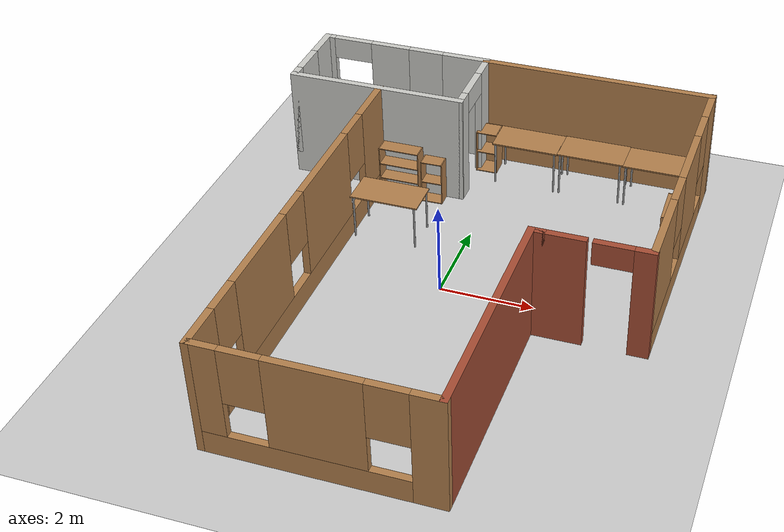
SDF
<sdf version="1.7">
 <world name="default">
  <model name="ground_plane">
   <static>1</static>
   <link name="link">
    <collision name="collision">
     <geometry><plane><normal>0 0 1</normal><size>100 100</size></plane></geometry>
     <surface><friction><ode><mu>100</mu><mu2>50</mu2></ode></friction></surface>
    </collision>
    <visual name="visual">
     <cast_shadows>0</cast_shadows>
     <geometry><plane><normal>0 0 1</normal><size>100 100</size></plane></geometry>
     <material>
      <script><uri>file://media/materials/scripts/gazebo.material</uri><name>Gazebo/Grey</name></script>
     </material>
    </visual>
   </link>
  </model>
  <model name="cafeteria_model">
   <pose>-0.0265 0.12555 0 0 -0 0</pose>
   <link name="Wall_0">
    <pose>-4.47492 4.0775 0 0 -0 -1.5708</pose>
    <visual name="Wall_0_Visual_0">
     <pose>-0.579377 0 1.25 0 -0 0</pose>
     <geometry><box><size>0.841246 0.15 2.5</size></box></geometry>
     <material>
      <script><uri>file://media/materials/scripts/gazebo.material</uri><name>Gazebo/CeilingTiled</name></script>
      <ambient>1 1 1 1</ambient>
     </material>
     <meta><layer>0</layer></meta>
    </visual>
    <collision name="Wall_0_Collision_0">
     <geometry><box><size>0.841246 0.15 2.5</size></box></geometry>
     <pose>-0.579377 0 1.25 0 -0 0</pose>
    </collision>
    <visual name="Wall_0_Visual_1">
     <pose>0.420623 0 0.25 0 -0 0</pose>
     <geometry><box><size>1.15875 0.15 0.5</size></box></geometry>
     <material>
      <script><uri>file://media/materials/scripts/gazebo.material</uri><name>Gazebo/CeilingTiled</name></script>
      <ambient>1 1 1 1</ambient>
     </material>
     <meta><layer>0</layer></meta>
    </visual>
    <collision name="Wall_0_Collision_1">
     <geometry><box><size>1.15875 0.15 0.5</size></box></geometry>
     <pose>0.420623 0 0.25 0 -0 0</pose>
    </collision>
    <visual name="Wall_0_Visual_2">
     <pose>0.820623 0 1.5 0 -0 0</pose>
     <geometry><box><size>0.358754 0.15 2</size></box></geometry>
     <material>
      <script><uri>file://media/materials/scripts/gazebo.material</uri><name>Gazebo/CeilingTiled</name></script>
      <ambient>1 1 1 1</ambient>
     </material>
     <meta><layer>0</layer></meta>
    </visual>
    <collision name="Wall_0_Collision_2">
     <geometry><box><size>0.358754 0.15 2</size></box></geometry>
     <pose>0.820623 0 1.5 0 -0 0</pose>
    </collision>
    <visual name="Wall_0_Visual_3">
     <pose>0.241246 0 1.9 0 -0 0</pose>
     <geometry><box><size>0.8 0.15 1.2</size></box></geometry>
     <material>
      <script><uri>file://media/materials/scripts/gazebo.material</uri><name>Gazebo/CeilingTiled</name></script>
      <ambient>1 1 1 1</ambient>
     </material>
     <meta><layer>0</layer></meta>
    </visual>
    <collision name="Wall_0_Collision_3">
     <geometry><box><size>0.8 0.15 1.2</size></box></geometry>
     <pose>0.241246 0 1.9 0 -0 0</pose>
    </collision>
   </link>
   <link name="Wall_1">
    <collision name="Wall_1_Collision">
     <geometry><box><size>4 0.15 2.5</size></box></geometry>
     <pose>0 0 1.25 0 -0 0</pose>
    </collision>
    <visual name="Wall_1_Visual">
     <pose>0 0 1.25 0 -0 0</pose>
     <geometry><box><size>4 0.15 2.5</size></box></geometry>
     <material>
      <script><uri>file://media/materials/scripts/gazebo.material</uri><name>Gazebo/CeilingTiled</name></script>
      <ambient>1 1 1 1</ambient>
     </material>
     <meta><layer>0</layer></meta>
    </visual>
    <pose>-2.54992 3.1525 0 0 -0 0</pose>
   </link>
   <link name="Wall_12">
    <collision name="Wall_12_Collision">
     <geometry><box><size>5 0.15 2.5</size></box></geometry>
     <pose>0 0 1.25 0 -0 0</pose>
    </collision>
    <visual name="Wall_12_Visual">
     <pose>0 0 1.25 0 -0 0</pose>
     <geometry><box><size>5 0.15 2.5</size></box></geometry>
     <material>
      <script><uri>file://media/materials/scripts/gazebo.material</uri><name>Gazebo/Bricks</name></script>
      <ambient>1 1 1 1</ambient>
     </material>
     <meta><layer>0</layer></meta>
    </visual>
    <pose>2.12508 -3.2725 0 0 -0 -1.5708</pose>
   </link>
   <link name="Wall_13">
    <pose>-0.174922 -5.6975 0 0 -0 3.14159</pose>
    <visual name="Wall_13_Visual_0">
     <pose>-2.0467 0 1.25 0 -0 0</pose>
     <geometry><box><size>0.65661 0.15 2.5</size></box></geometry>
     <material>
      <script><uri>file://media/materials/scripts/gazebo.material</uri><name>Gazebo/Wood</name></script>
      <ambient>1 1 1 1</ambient>
     </material>
     <meta><layer>0</layer></meta>
    </visual>
    <collision name="Wall_13_Collision_0">
     <geometry><box><size>0.65661 0.15 2.5</size></box></geometry>
     <pose>-2.0467 0 1.25 0 -0 0</pose>
    </collision>
    <visual name="Wall_13_Visual_1">
     <pose>0.328305 0 0.25 0 -0 0</pose>
     <geometry><box><size>4.09339 0.15 0.5</size></box></geometry>
     <material>
      <script><uri>file://media/materials/scripts/gazebo.material</uri><name>Gazebo/Wood</name></script>
      <ambient>1 1 1 1</ambient>
     </material>
     <meta><layer>0</layer></meta>
    </visual>
    <collision name="Wall_13_Collision_1">
     <geometry><box><size>4.09339 0.15 0.5</size></box></geometry>
     <pose>0.328305 0 0.25 0 -0 0</pose>
    </collision>
    <visual name="Wall_13_Visual_2">
     <pose>0.00446 0 1.5 0 -0 0</pose>
     <geometry><box><size>1.8457 0.15 2</size></box></geometry>
     <material>
      <script><uri>file://media/materials/scripts/gazebo.material</uri><name>Gazebo/Wood</name></script>
      <ambient>1 1 1 1</ambient>
     </material>
     <meta><layer>0</layer></meta>
    </visual>
    <collision name="Wall_13_Collision_2">
     <geometry><box><size>1.8457 0.15 2</size></box></geometry>
     <pose>0.00446 0 1.5 0 -0 0</pose>
    </collision>
    <visual name="Wall_13_Visual_3">
     <pose>2.05115 0 1.5 0 -0 0</pose>
     <geometry><box><size>0.647691 0.15 2</size></box></geometry>
     <material>
      <script><uri>file://media/materials/scripts/gazebo.material</uri><name>Gazebo/Wood</name></script>
      <ambient>1 1 1 1</ambient>
     </material>
     <meta><layer>0</layer></meta>
    </visual>
    <collision name="Wall_13_Collision_3">
     <geometry><box><size>0.647691 0.15 2</size></box></geometry>
     <pose>2.05115 0 1.5 0 -0 0</pose>
    </collision>
    <visual name="Wall_13_Visual_4">
     <pose>-1.31839 0 1.9 0 -0 0</pose>
     <geometry><box><size>0.8 0.15 1.2</size></box></geometry>
     <material>
      <script><uri>file://media/materials/scripts/gazebo.material</uri><name>Gazebo/Wood</name></script>
      <ambient>1 1 1 1</ambient>
     </material>
     <meta><layer>0</layer></meta>
    </visual>
    <collision name="Wall_13_Collision_4">
     <geometry><box><size>0.8 0.15 1.2</size></box></geometry>
     <pose>-1.31839 0 1.9 0 -0 0</pose>
    </collision>
    <visual name="Wall_13_Visual_5">
     <pose>1.32731 0 1.9 0 -0 0</pose>
     <geometry><box><size>0.8 0.15 1.2</size></box></geometry>
     <material>
      <script><uri>file://media/materials/scripts/gazebo.material</uri><name>Gazebo/Wood</name></script>
      <ambient>1 1 1 1</ambient>
     </material>
     <meta><layer>0</layer></meta>
    </visual>
    <collision name="Wall_13_Collision_5">
     <geometry><box><size>0.8 0.15 1.2</size></box></geometry>
     <pose>1.32731 0 1.9 0 -0 0</pose>
    </collision>
   </link>
   <link name="Wall_14">
    <pose>-2.47492 -1.2725 0 0 -0 1.5708</pose>
    <visual name="Wall_14_Visual_0">
     <pose>-4.01175 0 1.25 0 -0 0</pose>
     <geometry><box><size>0.976501 0.15 2.5</size></box></geometry>
     <material>
      <script><uri>file://media/materials/scripts/gazebo.material</uri><name>Gazebo/Wood</name></script>
      <ambient>1 1 1 1</ambient>
     </material>
     <meta><layer>0</layer></meta>
    </visual>
    <collision name="Wall_14_Collision_0">
     <geometry><box><size>0.976501 0.15 2.5</size></box></geometry>
     <pose>-4.01175 0 1.25 0 -0 0</pose>
    </collision>
    <visual name="Wall_14_Visual_1">
     <pose>0.488251 0 0.25 0 -0 0</pose>
     <geometry><box><size>8.0235 0.15 0.5</size></box></geometry>
     <material>
      <script><uri>file://media/materials/scripts/gazebo.material</uri><name>Gazebo/Wood</name></script>
      <ambient>1 1 1 1</ambient>
     </material>
     <meta><layer>0</layer></meta>
    </visual>
    <collision name="Wall_14_Collision_1">
     <geometry><box><size>8.0235 0.15 0.5</size></box></geometry>
     <pose>0.488251 0 0.25 0 -0 0</pose>
    </collision>
    <visual name="Wall_14_Visual_2">
     <pose>-1.64683 0 1.5 0 -0 0</pose>
     <geometry><box><size>2.15334 0.15 2</size></box></geometry>
     <material>
      <script><uri>file://media/materials/scripts/gazebo.material</uri><name>Gazebo/Wood</name></script>
      <ambient>1 1 1 1</ambient>
     </material>
     <meta><layer>0</layer></meta>
    </visual>
    <collision name="Wall_14_Collision_2">
     <geometry><box><size>2.15334 0.15 2</size></box></geometry>
     <pose>-1.64683 0 1.5 0 -0 0</pose>
    </collision>
    <visual name="Wall_14_Visual_3">
     <pose>1.33727 0 1.5 0 -0 0</pose>
     <geometry><box><size>2.21487 0.15 2</size></box></geometry>
     <material>
      <script><uri>file://media/materials/scripts/gazebo.material</uri><name>Gazebo/Wood</name></script>
      <ambient>1 1 1 1</ambient>
     </material>
     <meta><layer>0</layer></meta>
    </visual>
    <collision name="Wall_14_Collision_3">
     <geometry><box><size>2.21487 0.15 2</size></box></geometry>
     <pose>1.33727 0 1.5 0 -0 0</pose>
    </collision>
    <visual name="Wall_14_Visual_4">
     <pose>3.87235 0 1.5 0 -0 0</pose>
     <geometry><box><size>1.2553 0.15 2</size></box></geometry>
     <material>
      <script><uri>file://media/materials/scripts/gazebo.material</uri><name>Gazebo/Wood</name></script>
      <ambient>1 1 1 1</ambient>
     </material>
     <meta><layer>0</layer></meta>
    </visual>
    <collision name="Wall_14_Collision_4">
     <geometry><box><size>1.2553 0.15 2</size></box></geometry>
     <pose>3.87235 0 1.5 0 -0 0</pose>
    </collision>
    <visual name="Wall_14_Visual_5">
     <pose>-3.1235 0 1.9 0 -0 0</pose>
     <geometry><box><size>0.8 0.15 1.2</size></box></geometry>
     <material>
      <script><uri>file://media/materials/scripts/gazebo.material</uri><name>Gazebo/Wood</name></script>
      <ambient>1 1 1 1</ambient>
     </material>
     <meta><layer>0</layer></meta>
    </visual>
    <collision name="Wall_14_Collision_5">
     <geometry><box><size>0.8 0.15 1.2</size></box></geometry>
     <pose>-3.1235 0 1.9 0 -0 0</pose>
    </collision>
    <visual name="Wall_14_Visual_6">
     <pose>-0.170161 0 1.9 0 -0 0</pose>
     <geometry><box><size>0.8 0.15 1.2</size></box></geometry>
     <material>
      <script><uri>file://media/materials/scripts/gazebo.material</uri><name>Gazebo/Wood</name></script>
      <ambient>1 1 1 1</ambient>
     </material>
     <meta><layer>0</layer></meta>
    </visual>
    <collision name="Wall_14_Collision_6">
     <geometry><box><size>0.8 0.15 1.2</size></box></geometry>
     <pose>-0.170161 0 1.9 0 -0 0</pose>
    </collision>
    <visual name="Wall_14_Visual_7">
     <pose>2.8447 0 1.9 0 -0 0</pose>
     <geometry><box><size>0.8 0.15 1.2</size></box></geometry>
     <material>
      <script><uri>file://media/materials/scripts/gazebo.material</uri><name>Gazebo/Wood</name></script>
      <ambient>1 1 1 1</ambient>
     </material>
     <meta><layer>0</layer></meta>
    </visual>
    <collision name="Wall_14_Collision_7">
     <geometry><box><size>0.8 0.15 1.2</size></box></geometry>
     <pose>2.8447 0 1.9 0 -0 0</pose>
    </collision>
   </link>
   <link name="Wall_2">
    <pose>-0.624876 4.07892 0 0 -0 1.57075</pose>
    <visual name="Wall_2_Visual_0">
     <pose>-0.793545 0 1.25 0 -0 0</pose>
     <geometry><box><size>0.415751 0.15 2.5</size></box></geometry>
     <material>
      <script><uri>file://media/materials/scripts/gazebo.material</uri><name>Gazebo/CeilingTiled</name></script>
      <ambient>1 1 1 1</ambient>
     </material>
     <meta><layer>0</layer></meta>
    </visual>
    <collision name="Wall_2_Collision_0">
     <geometry><box><size>0.415751 0.15 2.5</size></box></geometry>
     <pose>-0.793545 0 1.25 0 -0 0</pose>
    </collision>
    <visual name="Wall_2_Visual_1">
     <pose>0.657876 0 1.25 0 -0 0</pose>
     <geometry><box><size>0.687089 0.15 2.5</size></box></geometry>
     <material>
      <script><uri>file://media/materials/scripts/gazebo.material</uri><name>Gazebo/CeilingTiled</name></script>
      <ambient>1 1 1 1</ambient>
     </material>
     <meta><layer>0</layer></meta>
    </visual>
    <collision name="Wall_2_Collision_1">
     <geometry><box><size>0.687089 0.15 2.5</size></box></geometry>
     <pose>0.657876 0 1.25 0 -0 0</pose>
    </collision>
    <visual name="Wall_2_Visual_2">
     <pose>-0.135669 0 2.25 0 -0 0</pose>
     <geometry><box><size>0.9 0.15 0.5</size></box></geometry>
     <material>
      <script><uri>file://media/materials/scripts/gazebo.material</uri><name>Gazebo/CeilingTiled</name></script>
      <ambient>1 1 1 1</ambient>
     </material>
     <meta><layer>0</layer></meta>
    </visual>
    <collision name="Wall_2_Collision_2">
     <geometry><box><size>0.9 0.15 0.5</size></box></geometry>
     <pose>-0.135669 0 2.25 0 -0 0</pose>
    </collision>
   </link>
   <link name="Wall_3">
    <pose>-2.54988 5.00392 0 0 -0 -3.14086</pose>
    <visual name="Wall_3_Visual_0">
     <pose>-1.44635 0 1.25 0 -0 0</pose>
     <geometry><box><size>1.10778 0.15 2.5</size></box></geometry>
     <material>
      <script><uri>file://media/materials/scripts/gazebo.material</uri><name>Gazebo/CeilingTiled</name></script>
      <ambient>1 1 1 1</ambient>
     </material>
     <meta><layer>0</layer></meta>
    </visual>
    <collision name="Wall_3_Collision_0">
     <geometry><box><size>1.10778 0.15 2.5</size></box></geometry>
     <pose>-1.44635 0 1.25 0 -0 0</pose>
    </collision>
    <visual name="Wall_3_Visual_1">
     <pose>1.86162 0 1.25 0 -0 0</pose>
     <geometry><box><size>0.27724 0.15 2.5</size></box></geometry>
     <material>
      <script><uri>file://media/materials/scripts/gazebo.material</uri><name>Gazebo/CeilingTiled</name></script>
      <ambient>1 1 1 1</ambient>
     </material>
     <meta><layer>0</layer></meta>
    </visual>
    <collision name="Wall_3_Collision_1">
     <geometry><box><size>0.27724 0.15 2.5</size></box></geometry>
     <pose>1.86162 0 1.25 0 -0 0</pose>
    </collision>
    <visual name="Wall_3_Visual_2">
     <pose>-0.034732 0 0.25 0 -0 0</pose>
     <geometry><box><size>1.71546 0.15 0.5</size></box></geometry>
     <material>
      <script><uri>file://media/materials/scripts/gazebo.material</uri><name>Gazebo/CeilingTiled</name></script>
      <ambient>1 1 1 1</ambient>
     </material>
     <meta><layer>0</layer></meta>
    </visual>
    <collision name="Wall_3_Collision_2">
     <geometry><box><size>1.71546 0.15 0.5</size></box></geometry>
     <pose>-0.034732 0 0.25 0 -0 0</pose>
    </collision>
    <visual name="Wall_3_Visual_3">
     <pose>0.365268 0 1.5 0 -0 0</pose>
     <geometry><box><size>0.915463 0.15 2</size></box></geometry>
     <material>
      <script><uri>file://media/materials/scripts/gazebo.material</uri><name>Gazebo/CeilingTiled</name></script>
      <ambient>1 1 1 1</ambient>
     </material>
     <meta><layer>0</layer></meta>
    </visual>
    <collision name="Wall_3_Collision_3">
     <geometry><box><size>0.915463 0.15 2</size></box></geometry>
     <pose>0.365268 0 1.5 0 -0 0</pose>
    </collision>
    <visual name="Wall_3_Visual_4">
     <pose>-0.492464 0 1.9 0 -0 0</pose>
     <geometry><box><size>0.8 0.15 1.2</size></box></geometry>
     <material>
      <script><uri>file://media/materials/scripts/gazebo.material</uri><name>Gazebo/CeilingTiled</name></script>
      <ambient>1 1 1 1</ambient>
     </material>
     <meta><layer>0</layer></meta>
    </visual>
    <collision name="Wall_3_Collision_4">
     <geometry><box><size>0.8 0.15 1.2</size></box></geometry>
     <pose>-0.492464 0 1.9 0 -0 0</pose>
    </collision>
    <visual name="Wall_3_Visual_5">
     <pose>1.273 0 2.25 0 -0 0</pose>
     <geometry><box><size>0.9 0.15 0.5</size></box></geometry>
     <material>
      <script><uri>file://media/materials/scripts/gazebo.material</uri><name>Gazebo/CeilingTiled</name></script>
      <ambient>1 1 1 1</ambient>
     </material>
     <meta><layer>0</layer></meta>
    </visual>
    <collision name="Wall_3_Collision_5">
     <geometry><box><size>0.9 0.15 0.5</size></box></geometry>
     <pose>1.273 0 2.25 0 -0 0</pose>
    </collision>
   </link>
   <link name="Wall_5">
    <collision name="Wall_5_Collision">
     <geometry><box><size>5.25 0.15 2.5</size></box></geometry>
     <pose>0 0 1.25 0 -0 0</pose>
    </collision>
    <visual name="Wall_5_Visual">
     <pose>0 0 1.25 0 -0 0</pose>
     <geometry><box><size>5.25 0.15 2.5</size></box></geometry>
     <material>
      <script><uri>file://media/materials/scripts/gazebo.material</uri><name>Gazebo/Wood</name></script>
      <ambient>1 1 1 1</ambient>
     </material>
     <meta><layer>0</layer></meta>
    </visual>
    <pose>1.92517 4.99384 0 0 -0 0</pose>
   </link>
   <link name="Wall_8">
    <pose>4.47512 2.07892 0 0 -0 -1.57081</pose>
    <visual name="Wall_8_Visual_0">
     <pose>-2.52409 0 1.25 0 -0 0</pose>
     <geometry><box><size>0.95466 0.15 2.5</size></box></geometry>
     <material>
      <script><uri>file://media/materials/scripts/gazebo.material</uri><name>Gazebo/Wood</name></script>
      <ambient>1 1 1 1</ambient>
     </material>
     <meta><layer>0</layer></meta>
    </visual>
    <collision name="Wall_8_Collision_0">
     <geometry><box><size>0.95466 0.15 2.5</size></box></geometry>
     <pose>-2.52409 0 1.25 0 -0 0</pose>
    </collision>
    <visual name="Wall_8_Visual_1">
     <pose>0.47733 0 0.25 0 -0 0</pose>
     <geometry><box><size>5.04818 0.15 0.5</size></box></geometry>
     <material>
      <script><uri>file://media/materials/scripts/gazebo.material</uri><name>Gazebo/Wood</name></script>
      <ambient>1 1 1 1</ambient>
     </material>
     <meta><layer>0</layer></meta>
    </visual>
    <collision name="Wall_8_Collision_1">
     <geometry><box><size>5.04818 0.15 0.5</size></box></geometry>
     <pose>0.47733 0 0.25 0 -0 0</pose>
    </collision>
    <visual name="Wall_8_Visual_2">
     <pose>-0.446966 0 1.5 0 -0 0</pose>
     <geometry><box><size>1.59959 0.15 2</size></box></geometry>
     <material>
      <script><uri>file://media/materials/scripts/gazebo.material</uri><name>Gazebo/Wood</name></script>
      <ambient>1 1 1 1</ambient>
     </material>
     <meta><layer>0</layer></meta>
    </visual>
    <collision name="Wall_8_Collision_2">
     <geometry><box><size>1.59959 0.15 2</size></box></geometry>
     <pose>-0.446966 0 1.5 0 -0 0</pose>
    </collision>
    <visual name="Wall_8_Visual_3">
     <pose>2.07712 0 1.5 0 -0 0</pose>
     <geometry><box><size>1.84859 0.15 2</size></box></geometry>
     <material>
      <script><uri>file://media/materials/scripts/gazebo.material</uri><name>Gazebo/Wood</name></script>
      <ambient>1 1 1 1</ambient>
     </material>
     <meta><layer>0</layer></meta>
    </visual>
    <collision name="Wall_8_Collision_3">
     <geometry><box><size>1.84859 0.15 2</size></box></geometry>
     <pose>2.07712 0 1.5 0 -0 0</pose>
    </collision>
    <visual name="Wall_8_Visual_4">
     <pose>-1.64676 0 1.9 0 -0 0</pose>
     <geometry><box><size>0.8 0.15 1.2</size></box></geometry>
     <material>
      <script><uri>file://media/materials/scripts/gazebo.material</uri><name>Gazebo/Wood</name></script>
      <ambient>1 1 1 1</ambient>
     </material>
     <meta><layer>0</layer></meta>
    </visual>
    <collision name="Wall_8_Collision_4">
     <geometry><box><size>0.8 0.15 1.2</size></box></geometry>
     <pose>-1.64676 0 1.9 0 -0 0</pose>
    </collision>
    <visual name="Wall_8_Visual_5">
     <pose>0.752828 0 1.9 0 -0 0</pose>
     <geometry><box><size>0.8 0.15 1.2</size></box></geometry>
     <material>
      <script><uri>file://media/materials/scripts/gazebo.material</uri><name>Gazebo/Wood</name></script>
      <ambient>1 1 1 1</ambient>
     </material>
     <meta><layer>0</layer></meta>
    </visual>
    <collision name="Wall_8_Collision_5">
     <geometry><box><size>0.8 0.15 1.2</size></box></geometry>
     <pose>0.752828 0 1.9 0 -0 0</pose>
    </collision>
   </link>
   <link name="Wall_9">
    <pose>3.30008 -0.8475 0 0 -0 3.14159</pose>
    <visual name="Wall_9_Visual_0">
     <pose>-1.03302 0 1.25 0 -0 0</pose>
     <geometry><box><size>0.433967 0.15 2.5</size></box></geometry>
     <material>
      <script><uri>file://media/materials/scripts/gazebo.material</uri><name>Gazebo/Bricks</name></script>
      <ambient>1 1 1 1</ambient>
     </material>
     <meta><layer>0</layer></meta>
    </visual>
    <collision name="Wall_9_Collision_0">
     <geometry><box><size>0.433967 0.15 2.5</size></box></geometry>
     <pose>-1.03302 0 1.25 0 -0 0</pose>
    </collision>
    <visual name="Wall_9_Visual_1">
     <pose>0.666984 0 1.25 0 -0 0</pose>
     <geometry><box><size>1.16603 0.15 2.5</size></box></geometry>
     <material>
      <script><uri>file://media/materials/scripts/gazebo.material</uri><name>Gazebo/Bricks</name></script>
      <ambient>1 1 1 1</ambient>
     </material>
     <meta><layer>0</layer></meta>
    </visual>
    <collision name="Wall_9_Collision_1">
     <geometry><box><size>1.16603 0.15 2.5</size></box></geometry>
     <pose>0.666984 0 1.25 0 -0 0</pose>
    </collision>
    <visual name="Wall_9_Visual_2">
     <pose>1.06692 0 1.25 0 -0 0</pose>
     <geometry><box><size>0.36617 0.15 2.5</size></box></geometry>
     <material>
      <script><uri>file://media/materials/scripts/gazebo.material</uri><name>Gazebo/Bricks</name></script>
      <ambient>1 1 1 1</ambient>
     </material>
     <meta><layer>0</layer></meta>
    </visual>
    <collision name="Wall_9_Collision_2">
     <geometry><box><size>0.36617 0.15 2.5</size></box></geometry>
     <pose>1.06692 0 1.25 0 -0 0</pose>
    </collision>
    <visual name="Wall_9_Visual_3">
     <pose>-0.416101 0 2.25 0 -0 0</pose>
     <geometry><box><size>0.799862 0.15 0.5</size></box></geometry>
     <material>
      <script><uri>file://media/materials/scripts/gazebo.material</uri><name>Gazebo/Bricks</name></script>
      <ambient>1 1 1 1</ambient>
     </material>
     <meta><layer>0</layer></meta>
    </visual>
    <collision name="Wall_9_Collision_3">
     <geometry><box><size>0.799862 0.15 0.5</size></box></geometry>
     <pose>-0.416101 0 2.25 0 -0 0</pose>
    </collision>
   </link>
   <static>1</static>
  </model>
  <model name="bookshelf">
   <static>1</static>
   <link name="link">
    <inertial><mass>1</mass></inertial>
    <collision name="back">
     <pose>0 0.005 0.6 0 -0 0</pose>
     <geometry><box><size>0.9 0.01 1.2</size></box></geometry>
    </collision>
    <visual name="visual1">
     <pose>0 0.005 0.6 0 -0 0</pose>
     <geometry><box><size>0.9 0.01 1.2</size></box></geometry>
     <material>
      <script><uri>file://media/materials/scripts/gazebo.material</uri><name>Gazebo/Wood</name></script>
     </material>
    </visual>
    <collision name="left_side">
     <pose>0.45 -0.195 0.6 0 -0 0</pose>
     <geometry><box><size>0.02 0.4 1.2</size></box></geometry>
    </collision>
    <visual name="visual2">
     <pose>0.45 -0.195 0.6 0 -0 0</pose>
     <geometry><box><size>0.02 0.4 1.2</size></box></geometry>
     <material>
      <script><uri>file://media/materials/scripts/gazebo.material</uri><name>Gazebo/Wood</name></script>
     </material>
    </visual>
    <collision name="right_side">
     <pose>-0.45 -0.195 0.6 0 -0 0</pose>
     <geometry><box><size>0.02 0.4 1.2</size></box></geometry>
    </collision>
    <visual name="visual3">
     <pose>-0.45 -0.195 0.6 0 -0 0</pose>
     <geometry><box><size>0.02 0.4 1.2</size></box></geometry>
     <material>
      <script><uri>file://media/materials/scripts/gazebo.material</uri><name>Gazebo/Wood</name></script>
     </material>
    </visual>
    <collision name="bottom">
     <pose>0 -0.195 0.03 0 -0 0</pose>
     <geometry><box><size>0.88 0.4 0.06</size></box></geometry>
    </collision>
    <visual name="visual4">
     <pose>0 -0.195 0.03 0 -0 0</pose>
     <geometry><box><size>0.88 0.4 0.06</size></box></geometry>
     <material>
      <script><uri>file://media/materials/scripts/gazebo.material</uri><name>Gazebo/Wood</name></script>
     </material>
    </visual>
    <collision name="top">
     <pose>0 -0.195 1.19 0 -0 0</pose>
     <geometry><box><size>0.88 0.4 0.02</size></box></geometry>
    </collision>
    <visual name="visual5">
     <pose>0 -0.195 1.19 0 -0 0</pose>
     <geometry><box><size>0.88 0.4 0.02</size></box></geometry>
     <material>
      <script><uri>file://media/materials/scripts/gazebo.material</uri><name>Gazebo/Wood</name></script>
     </material>
    </visual>
    <collision name="low_shelf">
     <pose>0 -0.195 0.43 0 -0 0</pose>
     <geometry><box><size>0.88 0.4 0.02</size></box></geometry>
    </collision>
    <visual name="visual6">
     <pose>0 -0.195 0.43 0 -0 0</pose>
     <geometry><box><size>0.88 0.4 0.02</size></box></geometry>
     <material>
      <script><uri>file://media/materials/scripts/gazebo.material</uri><name>Gazebo/Wood</name></script>
     </material>
    </visual>
    <collision name="high_shelf">
     <pose>0 -0.195 0.8 0 -0 0</pose>
     <geometry><box><size>0.88 0.4 0.02</size></box></geometry>
    </collision>
    <visual name="visual7">
     <pose>0 -0.195 0.8 0 -0 0</pose>
     <geometry><box><size>0.88 0.4 0.02</size></box></geometry>
     <material>
      <script><uri>file://media/materials/scripts/gazebo.material</uri><name>Gazebo/Wood</name></script>
     </material>
    </visual>
   </link>
   <pose>-1.96041 3.25452 0 0 -0 0</pose>
  </model>
  <model name="table_clone_1">
   <static>1</static>
   <link name="link">
    <collision name="surface">
     <pose>0 0 1 0 -0 0</pose>
     <geometry><box><size>1.5 0.8 0.03</size></box></geometry>
     <surface><friction><ode><mu>0.6</mu><mu2>0.6</mu2></ode></friction></surface>
    </collision>
    <visual name="visual1">
     <pose>0 0 1 0 -0 0</pose>
     <geometry><box><size>1.5 0.8 0.03</size></box></geometry>
     <material>
      <script><uri>file://media/materials/scripts/gazebo.material</uri><name>Gazebo/Wood</name></script>
     </material>
    </visual>
    <collision name="front_left_leg">
     <pose>0.68 0.38 0.5 0 -0 0</pose>
     <geometry><cylinder><radius>0.02</radius><length>1</length></cylinder></geometry>
    </collision>
    <visual name="front_left_leg">
     <pose>0.68 0.38 0.5 0 -0 0</pose>
     <geometry><cylinder><radius>0.02</radius><length>1</length></cylinder></geometry>
     <material>
      <script><uri>file://media/materials/scripts/gazebo.material</uri><name>Gazebo/Grey</name></script>
     </material>
    </visual>
    <collision name="front_right_leg">
     <pose>0.68 -0.38 0.5 0 -0 0</pose>
     <geometry><cylinder><radius>0.02</radius><length>1</length></cylinder></geometry>
    </collision>
    <visual name="front_right_leg">
     <pose>0.68 -0.38 0.5 0 -0 0</pose>
     <geometry><cylinder><radius>0.02</radius><length>1</length></cylinder></geometry>
     <material>
      <script><uri>file://media/materials/scripts/gazebo.material</uri><name>Gazebo/Grey</name></script>
     </material>
    </visual>
    <collision name="back_right_leg">
     <pose>-0.68 -0.38 0.5 0 -0 0</pose>
     <geometry><cylinder><radius>0.02</radius><length>1</length></cylinder></geometry>
    </collision>
    <visual name="back_right_leg">
     <pose>-0.68 -0.38 0.5 0 -0 0</pose>
     <geometry><cylinder><radius>0.02</radius><length>1</length></cylinder></geometry>
     <material>
      <script><uri>file://media/materials/scripts/gazebo.material</uri><name>Gazebo/Grey</name></script>
     </material>
    </visual>
    <collision name="back_left_leg">
     <pose>-0.68 0.38 0.5 0 -0 0</pose>
     <geometry><cylinder><radius>0.02</radius><length>1</length></cylinder></geometry>
    </collision>
    <visual name="back_left_leg">
     <pose>-0.68 0.38 0.5 0 -0 0</pose>
     <geometry><cylinder><radius>0.02</radius><length>1</length></cylinder></geometry>
     <material>
      <script><uri>file://media/materials/scripts/gazebo.material</uri><name>Gazebo/Grey</name></script>
     </material>
    </visual>
   </link>
   <pose>-1.66586 1.58422 0 0 -0 0</pose>
  </model>
  <model name="table_clone_2">
   <static>1</static>
   <link name="link">
    <collision name="surface">
     <pose>0 0 1 0 -0 0</pose>
     <geometry><box><size>1.5 0.8 0.03</size></box></geometry>
     <surface><friction><ode><mu>0.6</mu><mu2>0.6</mu2></ode></friction></surface>
    </collision>
    <visual name="visual1">
     <pose>0 0 1 0 -0 0</pose>
     <geometry><box><size>1.5 0.8 0.03</size></box></geometry>
     <material>
      <script><uri>file://media/materials/scripts/gazebo.material</uri><name>Gazebo/Wood</name></script>
     </material>
    </visual>
    <collision name="front_left_leg">
     <pose>0.68 0.38 0.5 0 -0 0</pose>
     <geometry><cylinder><radius>0.02</radius><length>1</length></cylinder></geometry>
    </collision>
    <visual name="front_left_leg">
     <pose>0.68 0.38 0.5 0 -0 0</pose>
     <geometry><cylinder><radius>0.02</radius><length>1</length></cylinder></geometry>
     <material>
      <script><uri>file://media/materials/scripts/gazebo.material</uri><name>Gazebo/Grey</name></script>
     </material>
    </visual>
    <collision name="front_right_leg">
     <pose>0.68 -0.38 0.5 0 -0 0</pose>
     <geometry><cylinder><radius>0.02</radius><length>1</length></cylinder></geometry>
    </collision>
    <visual name="front_right_leg">
     <pose>0.68 -0.38 0.5 0 -0 0</pose>
     <geometry><cylinder><radius>0.02</radius><length>1</length></cylinder></geometry>
     <material>
      <script><uri>file://media/materials/scripts/gazebo.material</uri><name>Gazebo/Grey</name></script>
     </material>
    </visual>
    <collision name="back_right_leg">
     <pose>-0.68 -0.38 0.5 0 -0 0</pose>
     <geometry><cylinder><radius>0.02</radius><length>1</length></cylinder></geometry>
    </collision>
    <visual name="back_right_leg">
     <pose>-0.68 -0.38 0.5 0 -0 0</pose>
     <geometry><cylinder><radius>0.02</radius><length>1</length></cylinder></geometry>
     <material>
      <script><uri>file://media/materials/scripts/gazebo.material</uri><name>Gazebo/Grey</name></script>
     </material>
    </visual>
    <collision name="back_left_leg">
     <pose>-0.68 0.38 0.5 0 -0 0</pose>
     <geometry><cylinder><radius>0.02</radius><length>1</length></cylinder></geometry>
    </collision>
    <visual name="back_left_leg">
     <pose>-0.68 0.38 0.5 0 -0 0</pose>
     <geometry><cylinder><radius>0.02</radius><length>1</length></cylinder></geometry>
     <material>
      <script><uri>file://media/materials/scripts/gazebo.material</uri><name>Gazebo/Grey</name></script>
     </material>
    </visual>
   </link>
   <pose>3.54769 4.50131 0 0 -0 0</pose>
  </model>
  <model name="table_clone_3">
   <static>1</static>
   <link name="link">
    <collision name="surface">
     <pose>0 0 1 0 -0 0</pose>
     <geometry><box><size>1.5 0.8 0.03</size></box></geometry>
     <surface><friction><ode><mu>0.6</mu><mu2>0.6</mu2></ode></friction></surface>
    </collision>
    <visual name="visual1">
     <pose>0 0 1 0 -0 0</pose>
     <geometry><box><size>1.5 0.8 0.03</size></box></geometry>
     <material>
      <script><uri>file://media/materials/scripts/gazebo.material</uri><name>Gazebo/Wood</name></script>
     </material>
    </visual>
    <collision name="front_left_leg">
     <pose>0.68 0.38 0.5 0 -0 0</pose>
     <geometry><cylinder><radius>0.02</radius><length>1</length></cylinder></geometry>
    </collision>
    <visual name="front_left_leg">
     <pose>0.68 0.38 0.5 0 -0 0</pose>
     <geometry><cylinder><radius>0.02</radius><length>1</length></cylinder></geometry>
     <material>
      <script><uri>file://media/materials/scripts/gazebo.material</uri><name>Gazebo/Grey</name></script>
     </material>
    </visual>
    <collision name="front_right_leg">
     <pose>0.68 -0.38 0.5 0 -0 0</pose>
     <geometry><cylinder><radius>0.02</radius><length>1</length></cylinder></geometry>
    </collision>
    <visual name="front_right_leg">
     <pose>0.68 -0.38 0.5 0 -0 0</pose>
     <geometry><cylinder><radius>0.02</radius><length>1</length></cylinder></geometry>
     <material>
      <script><uri>file://media/materials/scripts/gazebo.material</uri><name>Gazebo/Grey</name></script>
     </material>
    </visual>
    <collision name="back_right_leg">
     <pose>-0.68 -0.38 0.5 0 -0 0</pose>
     <geometry><cylinder><radius>0.02</radius><length>1</length></cylinder></geometry>
    </collision>
    <visual name="back_right_leg">
     <pose>-0.68 -0.38 0.5 0 -0 0</pose>
     <geometry><cylinder><radius>0.02</radius><length>1</length></cylinder></geometry>
     <material>
      <script><uri>file://media/materials/scripts/gazebo.material</uri><name>Gazebo/Grey</name></script>
     </material>
    </visual>
    <collision name="back_left_leg">
     <pose>-0.68 0.38 0.5 0 -0 0</pose>
     <geometry><cylinder><radius>0.02</radius><length>1</length></cylinder></geometry>
    </collision>
    <visual name="back_left_leg">
     <pose>-0.68 0.38 0.5 0 -0 0</pose>
     <geometry><cylinder><radius>0.02</radius><length>1</length></cylinder></geometry>
     <material>
      <script><uri>file://media/materials/scripts/gazebo.material</uri><name>Gazebo/Grey</name></script>
     </material>
    </visual>
   </link>
   <pose>2.0547 4.51975 0 0 -0 0</pose>
  </model>
  <model name="table_clone_4">
   <static>1</static>
   <link name="link">
    <collision name="surface">
     <pose>0 0 1 0 -0 0</pose>
     <geometry><box><size>1.5 0.8 0.03</size></box></geometry>
     <surface><friction><ode><mu>0.6</mu><mu2>0.6</mu2></ode></friction></surface>
    </collision>
    <visual name="visual1">
     <pose>0 0 1 0 -0 0</pose>
     <geometry><box><size>1.5 0.8 0.03</size></box></geometry>
     <material>
      <script><uri>file://media/materials/scripts/gazebo.material</uri><name>Gazebo/Wood</name></script>
     </material>
    </visual>
    <collision name="front_left_leg">
     <pose>0.68 0.38 0.5 0 -0 0</pose>
     <geometry><cylinder><radius>0.02</radius><length>1</length></cylinder></geometry>
    </collision>
    <visual name="front_left_leg">
     <pose>0.68 0.38 0.5 0 -0 0</pose>
     <geometry><cylinder><radius>0.02</radius><length>1</length></cylinder></geometry>
     <material>
      <script><uri>file://media/materials/scripts/gazebo.material</uri><name>Gazebo/Grey</name></script>
     </material>
    </visual>
    <collision name="front_right_leg">
     <pose>0.68 -0.38 0.5 0 -0 0</pose>
     <geometry><cylinder><radius>0.02</radius><length>1</length></cylinder></geometry>
    </collision>
    <visual name="front_right_leg">
     <pose>0.68 -0.38 0.5 0 -0 0</pose>
     <geometry><cylinder><radius>0.02</radius><length>1</length></cylinder></geometry>
     <material>
      <script><uri>file://media/materials/scripts/gazebo.material</uri><name>Gazebo/Grey</name></script>
     </material>
    </visual>
    <collision name="back_right_leg">
     <pose>-0.68 -0.38 0.5 0 -0 0</pose>
     <geometry><cylinder><radius>0.02</radius><length>1</length></cylinder></geometry>
    </collision>
    <visual name="back_right_leg">
     <pose>-0.68 -0.38 0.5 0 -0 0</pose>
     <geometry><cylinder><radius>0.02</radius><length>1</length></cylinder></geometry>
     <material>
      <script><uri>file://media/materials/scripts/gazebo.material</uri><name>Gazebo/Grey</name></script>
     </material>
    </visual>
    <collision name="back_left_leg">
     <pose>-0.68 0.38 0.5 0 -0 0</pose>
     <geometry><cylinder><radius>0.02</radius><length>1</length></cylinder></geometry>
    </collision>
    <visual name="back_left_leg">
     <pose>-0.68 0.38 0.5 0 -0 0</pose>
     <geometry><cylinder><radius>0.02</radius><length>1</length></cylinder></geometry>
     <material>
      <script><uri>file://media/materials/scripts/gazebo.material</uri><name>Gazebo/Grey</name></script>
     </material>
    </visual>
   </link>
   <pose>0.568023 4.50018 0 0 -0 0</pose>
  </model>
  <model name="bookshelf_clone">
   <static>1</static>
   <link name="link">
    <inertial><mass>1</mass></inertial>
    <collision name="back">
     <pose>0 0.005 0.6 0 -0 0</pose>
     <geometry><box><size>0.9 0.01 1.2</size></box></geometry>
    </collision>
    <visual name="visual1">
     <pose>0 0.005 0.6 0 -0 0</pose>
     <geometry><box><size>0.9 0.01 1.2</size></box></geometry>
     <material>
      <script><uri>file://media/materials/scripts/gazebo.material</uri><name>Gazebo/Wood</name></script>
     </material>
    </visual>
    <collision name="left_side">
     <pose>0.45 -0.195 0.6 0 -0 0</pose>
     <geometry><box><size>0.02 0.4 1.2</size></box></geometry>
    </collision>
    <visual name="visual2">
     <pose>0.45 -0.195 0.6 0 -0 0</pose>
     <geometry><box><size>0.02 0.4 1.2</size></box></geometry>
     <material>
      <script><uri>file://media/materials/scripts/gazebo.material</uri><name>Gazebo/Wood</name></script>
     </material>
    </visual>
    <collision name="right_side">
     <pose>-0.45 -0.195 0.6 0 -0 0</pose>
     <geometry><box><size>0.02 0.4 1.2</size></box></geometry>
    </collision>
    <visual name="visual3">
     <pose>-0.45 -0.195 0.6 0 -0 0</pose>
     <geometry><box><size>0.02 0.4 1.2</size></box></geometry>
     <material>
      <script><uri>file://media/materials/scripts/gazebo.material</uri><name>Gazebo/Wood</name></script>
     </material>
    </visual>
    <collision name="bottom">
     <pose>0 -0.195 0.03 0 -0 0</pose>
     <geometry><box><size>0.88 0.4 0.06</size></box></geometry>
    </collision>
    <visual name="visual4">
     <pose>0 -0.195 0.03 0 -0 0</pose>
     <geometry><box><size>0.88 0.4 0.06</size></box></geometry>
     <material>
      <script><uri>file://media/materials/scripts/gazebo.material</uri><name>Gazebo/Wood</name></script>
     </material>
    </visual>
    <collision name="top">
     <pose>0 -0.195 1.19 0 -0 0</pose>
     <geometry><box><size>0.88 0.4 0.02</size></box></geometry>
    </collision>
    <visual name="visual5">
     <pose>0 -0.195 1.19 0 -0 0</pose>
     <geometry><box><size>0.88 0.4 0.02</size></box></geometry>
     <material>
      <script><uri>file://media/materials/scripts/gazebo.material</uri><name>Gazebo/Wood</name></script>
     </material>
    </visual>
    <collision name="low_shelf">
     <pose>0 -0.195 0.43 0 -0 0</pose>
     <geometry><box><size>0.88 0.4 0.02</size></box></geometry>
    </collision>
    <visual name="visual6">
     <pose>0 -0.195 0.43 0 -0 0</pose>
     <geometry><box><size>0.88 0.4 0.02</size></box></geometry>
     <material>
      <script><uri>file://media/materials/scripts/gazebo.material</uri><name>Gazebo/Wood</name></script>
     </material>
    </visual>
    <collision name="high_shelf">
     <pose>0 -0.195 0.8 0 -0 0</pose>
     <geometry><box><size>0.88 0.4 0.02</size></box></geometry>
    </collision>
    <visual name="visual7">
     <pose>0 -0.195 0.8 0 -0 0</pose>
     <geometry><box><size>0.88 0.4 0.02</size></box></geometry>
     <material>
      <script><uri>file://media/materials/scripts/gazebo.material</uri><name>Gazebo/Wood</name></script>
     </material>
    </visual>
   </link>
   <pose>4.41941 2.65334 0.019468 0 0 -1.54155</pose>
  </model>
  <model name="cabinet_clone">
   <static>1</static>
   <link name="cabinet_bottom_plate">
    <inertial>
     <pose>0 0 -1 0 -0 0</pose>
     <inertia><ixx>2.05</ixx><ixy>0</ixy><ixz>0</ixz><iyy>2.05</iyy><iyz>0</iyz><izz>2.05</izz></inertia>
     <mass>25</mass>
    </inertial>
    <collision name="cabinet_bottom_plate_geom">
     <pose>0 0 0.01 0 -0 0</pose>
     <geometry><box><size>0.45 0.45 0.02</size></box></geometry>
    </collision>
    <visual name="cabinet_bottom_plate_geom_visual">
     <pose>0 0 0.01 0 -0 0</pose>
     <geometry><box><size>0.45 0.45 0.02</size></box></geometry>
     <material>
      <script><uri>file://media/materials/scripts/gazebo.material</uri><name>Gazebo/Wood</name></script>
     </material>
    </visual>
    <collision name="cabinet_bottom_plate_geom_cabinet_back_plate">
     <pose>0.235 0 0.51 0 -0 0</pose>
     <geometry><box><size>0.02 0.45 1.02</size></box></geometry>
    </collision>
    <visual name="cabinet_bottom_plate_geom_cabinet_back_plate_visual">
     <pose>0.235 0 0.51 0 -0 0</pose>
     <geometry><box><size>0.02 0.45 1.02</size></box></geometry>
     <material>
      <script><uri>file://media/materials/scripts/gazebo.material</uri><name>Gazebo/Wood</name></script>
     </material>
    </visual>
    <collision name="cabinet_bottom_plate_geom_cabinet_left_plate">
     <pose>0 0.235 0.51 0 -0 0</pose>
     <geometry><box><size>0.45 0.02 1.02</size></box></geometry>
    </collision>
    <visual name="cabinet_bottom_plate_geom_cabinet_left_plate_visual">
     <pose>0 0.235 0.51 0 -0 0</pose>
     <geometry><box><size>0.45 0.02 1.02</size></box></geometry>
     <material>
      <script><uri>file://media/materials/scripts/gazebo.material</uri><name>Gazebo/Wood</name></script>
     </material>
    </visual>
    <collision name="cabinet_bottom_plate_geom_cabinet_middle_plate">
     <pose>0 0 0.51 0 -0 0</pose>
     <geometry><box><size>0.45 0.45 0.02</size></box></geometry>
    </collision>
    <visual name="cabinet_bottom_plate_geom_cabinet_middle_plate_visual">
     <pose>0 0 0.51 0 -0 0</pose>
     <geometry><box><size>0.45 0.45 0.02</size></box></geometry>
     <material>
      <script><uri>file://media/materials/scripts/gazebo.material</uri><name>Gazebo/Wood</name></script>
     </material>
    </visual>
    <collision name="cabinet_bottom_plate_geom_cabinet_right_plate">
     <pose>0 -0.235 0.51 0 -0 0</pose>
     <geometry><box><size>0.45 0.02 1.02</size></box></geometry>
    </collision>
    <visual name="cabinet_bottom_plate_geom_cabinet_right_plate_visual">
     <pose>0 -0.235 0.51 0 -0 0</pose>
     <geometry><box><size>0.45 0.02 1.02</size></box></geometry>
     <material>
      <script><uri>file://media/materials/scripts/gazebo.material</uri><name>Gazebo/Wood</name></script>
     </material>
    </visual>
    <collision name="cabinet_bottom_plate_geom_cabinet_top_plate">
     <pose>0 0 1.01 0 -0 0</pose>
     <geometry><box><size>0.45 0.45 0.02</size></box></geometry>
    </collision>
    <visual name="cabinet_bottom_plate_geom_cabinet_top_plate_visual">
     <pose>0 0 1.01 0 -0 0</pose>
     <geometry><box><size>0.45 0.45 0.02</size></box></geometry>
     <material>
      <script><uri>file://media/materials/scripts/gazebo.material</uri><name>Gazebo/Wood</name></script>
     </material>
    </visual>
   </link>
   <pose>4.15131 0.808994 0 0 -0 0</pose>
  </model>
  <model name="cabinet_clone_1">
   <static>1</static>
   <link name="cabinet_bottom_plate">
    <inertial>
     <pose>0 0 -1 0 -0 0</pose>
     <inertia><ixx>2.05</ixx><ixy>0</ixy><ixz>0</ixz><iyy>2.05</iyy><iyz>0</iyz><izz>2.05</izz></inertia>
     <mass>25</mass>
    </inertial>
    <collision name="cabinet_bottom_plate_geom">
     <pose>0 0 0.01 0 -0 0</pose>
     <geometry><box><size>0.45 0.45 0.02</size></box></geometry>
    </collision>
    <visual name="cabinet_bottom_plate_geom_visual">
     <pose>0 0 0.01 0 -0 0</pose>
     <geometry><box><size>0.45 0.45 0.02</size></box></geometry>
     <material>
      <script><uri>file://media/materials/scripts/gazebo.material</uri><name>Gazebo/Wood</name></script>
     </material>
    </visual>
    <collision name="cabinet_bottom_plate_geom_cabinet_back_plate">
     <pose>0.235 0 0.51 0 -0 0</pose>
     <geometry><box><size>0.02 0.45 1.02</size></box></geometry>
    </collision>
    <visual name="cabinet_bottom_plate_geom_cabinet_back_plate_visual">
     <pose>0.235 0 0.51 0 -0 0</pose>
     <geometry><box><size>0.02 0.45 1.02</size></box></geometry>
     <material>
      <script><uri>file://media/materials/scripts/gazebo.material</uri><name>Gazebo/Wood</name></script>
     </material>
    </visual>
    <collision name="cabinet_bottom_plate_geom_cabinet_left_plate">
     <pose>0 0.235 0.51 0 -0 0</pose>
     <geometry><box><size>0.45 0.02 1.02</size></box></geometry>
    </collision>
    <visual name="cabinet_bottom_plate_geom_cabinet_left_plate_visual">
     <pose>0 0.235 0.51 0 -0 0</pose>
     <geometry><box><size>0.45 0.02 1.02</size></box></geometry>
     <material>
      <script><uri>file://media/materials/scripts/gazebo.material</uri><name>Gazebo/Wood</name></script>
     </material>
    </visual>
    <collision name="cabinet_bottom_plate_geom_cabinet_middle_plate">
     <pose>0 0 0.51 0 -0 0</pose>
     <geometry><box><size>0.45 0.45 0.02</size></box></geometry>
    </collision>
    <visual name="cabinet_bottom_plate_geom_cabinet_middle_plate_visual">
     <pose>0 0 0.51 0 -0 0</pose>
     <geometry><box><size>0.45 0.45 0.02</size></box></geometry>
     <material>
      <script><uri>file://media/materials/scripts/gazebo.material</uri><name>Gazebo/Wood</name></script>
     </material>
    </visual>
    <collision name="cabinet_bottom_plate_geom_cabinet_right_plate">
     <pose>0 -0.235 0.51 0 -0 0</pose>
     <geometry><box><size>0.45 0.02 1.02</size></box></geometry>
    </collision>
    <visual name="cabinet_bottom_plate_geom_cabinet_right_plate_visual">
     <pose>0 -0.235 0.51 0 -0 0</pose>
     <geometry><box><size>0.45 0.02 1.02</size></box></geometry>
     <material>
      <script><uri>file://media/materials/scripts/gazebo.material</uri><name>Gazebo/Wood</name></script>
     </material>
    </visual>
    <collision name="cabinet_bottom_plate_geom_cabinet_top_plate">
     <pose>0 0 1.01 0 -0 0</pose>
     <geometry><box><size>0.45 0.45 0.02</size></box></geometry>
    </collision>
    <visual name="cabinet_bottom_plate_geom_cabinet_top_plate_visual">
     <pose>0 0 1.01 0 -0 0</pose>
     <geometry><box><size>0.45 0.45 0.02</size></box></geometry>
     <material>
      <script><uri>file://media/materials/scripts/gazebo.material</uri><name>Gazebo/Wood</name></script>
     </material>
    </visual>
   </link>
   <pose>-1.21115 3.10086 0 0 -0 1.59325</pose>
  </model>
  <model name="cabinet_clone_2">
   <static>1</static>
   <link name="cabinet_bottom_plate">
    <inertial>
     <pose>0 0 -1 0 -0 0</pose>
     <inertia><ixx>2.05</ixx><ixy>0</ixy><ixz>0</ixz><iyy>2.05</iyy><iyz>0</iyz><izz>2.05</izz></inertia>
     <mass>25</mass>
    </inertial>
    <collision name="cabinet_bottom_plate_geom">
     <pose>0 0 0.01 0 -0 0</pose>
     <geometry><box><size>0.45 0.45 0.02</size></box></geometry>
    </collision>
    <visual name="cabinet_bottom_plate_geom_visual">
     <pose>0 0 0.01 0 -0 0</pose>
     <geometry><box><size>0.45 0.45 0.02</size></box></geometry>
     <material>
      <script><uri>file://media/materials/scripts/gazebo.material</uri><name>Gazebo/Wood</name></script>
     </material>
    </visual>
    <collision name="cabinet_bottom_plate_geom_cabinet_back_plate">
     <pose>0.235 0 0.51 0 -0 0</pose>
     <geometry><box><size>0.02 0.45 1.02</size></box></geometry>
    </collision>
    <visual name="cabinet_bottom_plate_geom_cabinet_back_plate_visual">
     <pose>0.235 0 0.51 0 -0 0</pose>
     <geometry><box><size>0.02 0.45 1.02</size></box></geometry>
     <material>
      <script><uri>file://media/materials/scripts/gazebo.material</uri><name>Gazebo/Wood</name></script>
     </material>
    </visual>
    <collision name="cabinet_bottom_plate_geom_cabinet_left_plate">
     <pose>0 0.235 0.51 0 -0 0</pose>
     <geometry><box><size>0.45 0.02 1.02</size></box></geometry>
    </collision>
    <visual name="cabinet_bottom_plate_geom_cabinet_left_plate_visual">
     <pose>0 0.235 0.51 0 -0 0</pose>
     <geometry><box><size>0.45 0.02 1.02</size></box></geometry>
     <material>
      <script><uri>file://media/materials/scripts/gazebo.material</uri><name>Gazebo/Wood</name></script>
     </material>
    </visual>
    <collision name="cabinet_bottom_plate_geom_cabinet_middle_plate">
     <pose>0 0 0.51 0 -0 0</pose>
     <geometry><box><size>0.45 0.45 0.02</size></box></geometry>
    </collision>
    <visual name="cabinet_bottom_plate_geom_cabinet_middle_plate_visual">
     <pose>0 0 0.51 0 -0 0</pose>
     <geometry><box><size>0.45 0.45 0.02</size></box></geometry>
     <material>
      <script><uri>file://media/materials/scripts/gazebo.material</uri><name>Gazebo/Wood</name></script>
     </material>
    </visual>
    <collision name="cabinet_bottom_plate_geom_cabinet_right_plate">
     <pose>0 -0.235 0.51 0 -0 0</pose>
     <geometry><box><size>0.45 0.02 1.02</size></box></geometry>
    </collision>
    <visual name="cabinet_bottom_plate_geom_cabinet_right_plate_visual">
     <pose>0 -0.235 0.51 0 -0 0</pose>
     <geometry><box><size>0.45 0.02 1.02</size></box></geometry>
     <material>
      <script><uri>file://media/materials/scripts/gazebo.material</uri><name>Gazebo/Wood</name></script>
     </material>
    </visual>
    <collision name="cabinet_bottom_plate_geom_cabinet_top_plate">
     <pose>0 0 1.01 0 -0 0</pose>
     <geometry><box><size>0.45 0.45 0.02</size></box></geometry>
    </collision>
    <visual name="cabinet_bottom_plate_geom_cabinet_top_plate_visual">
     <pose>0 0 1.01 0 -0 0</pose>
     <geometry><box><size>0.45 0.45 0.02</size></box></geometry>
     <material>
      <script><uri>file://media/materials/scripts/gazebo.material</uri><name>Gazebo/Wood</name></script>
     </material>
    </visual>
   </link>
   <pose>-0.429533 4.65283 0 0 -0 1.58011</pose>
  </model>
 </world>
</sdf>
